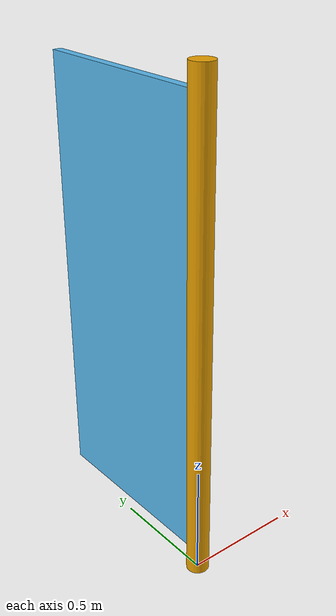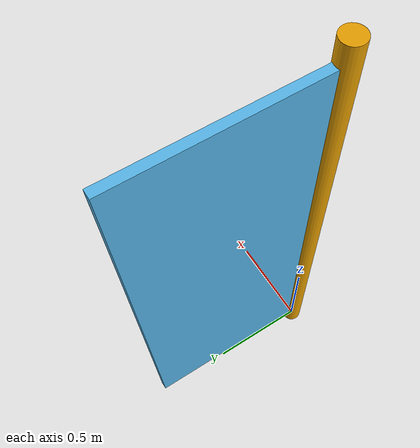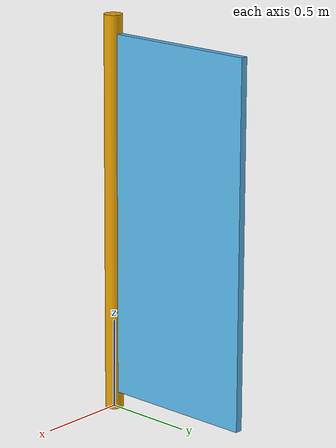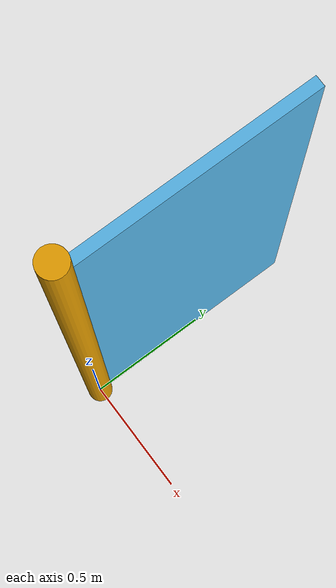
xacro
<?xml version="1.0"?>
<robot xmlns:xacro="http://www.ros.org/wiki/xacro" name="room_door">

  <link name="base_link">
     <inertial>
      <mass value="1000.0" />
      <inertia  ixx="1.0" ixy="0.0"  ixz="0.0"  iyy="1.0"  iyz="0.0"  izz="1.0" />
    </inertial>
    <visual>
      <origin xyz="0 0 1.1" rpy="0 0 0" />
      <geometry>
        <cylinder length="2.2" radius="0.05"/>
      </geometry>
    </visual>
    <collision>
      <origin xyz="0 0 1.1" rpy="0 0 0" />
      <geometry>
        <cylinder length="2.2" radius="0.05"/>
      </geometry>
    </collision>
  </link>

  <link name="door">
     <inertial>
      <mass value="1.0" />
      <inertia  ixx="1.0" ixy="0.0"  ixz="0.0"  iyy="1.0"  iyz="0.0"  izz="1.0" />
    </inertial>
    <visual>
      <origin xyz="0 0.45 0" rpy="0 0 0" />
      <geometry>
        <box size="0.04 .9 2.0"/>
      </geometry>
    </visual>
    <collision>
      <origin xyz="0 0.45 0" rpy="0 0 0" />
      <geometry>
        <box size="0.04 .9 2.0"/>
      </geometry>
    </collision>
  </link>

  <joint name="door_hinge" type="revolute">
    <parent link="base_link"/>
    <child link="door"/>
    <origin xyz="0 0 1.1"/>
    <axis xyz="0 0 1"/>
    <limit effort="1000.0" lower="-1.57" upper="1.57" velocity="100"/>
  </joint>

</robot>
